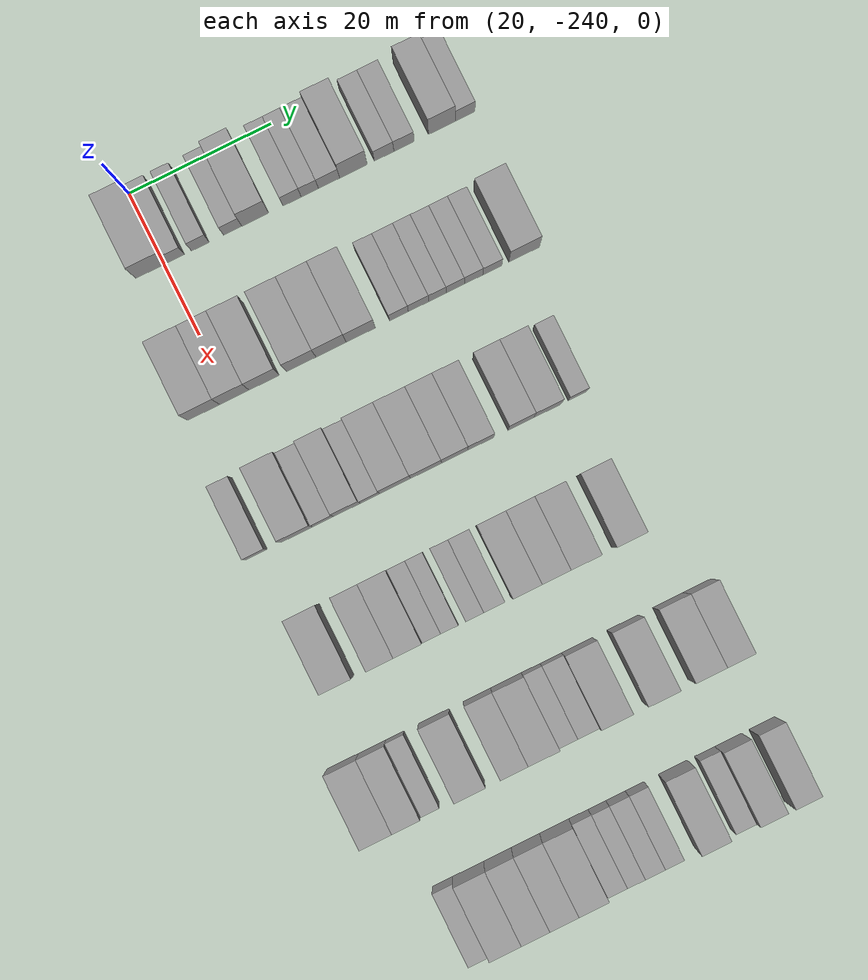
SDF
<sdf version="1.6">
 <world name="default">
  <model name="building_24">
   <static>1</static>
   <pose>25.0000 -241.8456 0 0.000000 0.000000 0.000000</pose>
   <link name="link">
    <pose>0 0 4.50 0 0 0</pose>
    <collision name="collision"><geometry><box><size>10.0000 4.2381 9.0000</size></box></geometry></collision>
    <visual name="visual">
     <cast_shadows>0</cast_shadows>
     <geometry><box><size>10.0000 4.2381 9.0000</size></box></geometry>
     <material>
      <script>
       <uri>model://grey_wall/materials/scripts</uri>
       <uri>model://grey_wall/materials/textures</uri>
       <name>vrc/grey_wall</name>
      </script>
     </material>
    </visual>
   </link>
  </model>
  <model name="building_25">
   <static>1</static>
   <pose>25.0000 -238.4380 0 0.000000 0.000000 0.000000</pose>
   <link name="link">
    <pose>0 0 3.00 0 0 0</pose>
    <collision name="collision"><geometry><box><size>10.0000 2.5771 6.0000</size></box></geometry></collision>
    <visual name="visual">
     <cast_shadows>0</cast_shadows>
     <geometry><box><size>10.0000 2.5771 6.0000</size></box></geometry>
     <material>
      <script>
       <uri>model://grey_wall/materials/scripts</uri>
       <uri>model://grey_wall/materials/textures</uri>
       <name>vrc/grey_wall</name>
      </script>
     </material>
    </visual>
   </link>
  </model>
  <model name="building_26">
   <static>1</static>
   <pose>25.0000 -234.9004 0 0.000000 0.000000 0.000000</pose>
   <link name="link">
    <pose>0 0 3.00 0 0 0</pose>
    <collision name="collision"><geometry><box><size>10.0000 2.4980 6.0000</size></box></geometry></collision>
    <visual name="visual">
     <cast_shadows>0</cast_shadows>
     <geometry><box><size>10.0000 2.4980 6.0000</size></box></geometry>
     <material>
      <script>
       <uri>model://grey_wall/materials/scripts</uri>
       <uri>model://grey_wall/materials/textures</uri>
       <name>vrc/grey_wall</name>
      </script>
     </material>
    </visual>
   </link>
  </model>
  <model name="building_27">
   <static>1</static>
   <pose>25.0000 -230.3771 0 0.000000 0.000000 0.000000</pose>
   <link name="link">
    <pose>0 0 3.00 0 0 0</pose>
    <collision name="collision"><geometry><box><size>10.0000 2.5487 6.0000</size></box></geometry></collision>
    <visual name="visual">
     <cast_shadows>0</cast_shadows>
     <geometry><box><size>10.0000 2.5487 6.0000</size></box></geometry>
     <material>
      <script>
       <uri>model://grey_wall/materials/scripts</uri>
       <uri>model://grey_wall/materials/textures</uri>
       <name>vrc/grey_wall</name>
      </script>
     </material>
    </visual>
   </link>
  </model>
  <model name="building_28">
   <static>1</static>
   <pose>25.0000 -227.2078 0 0.000000 0.000000 0.000000</pose>
   <link name="link">
    <pose>0 0 4.50 0 0 0</pose>
    <collision name="collision"><geometry><box><size>10.0000 3.7900 9.0000</size></box></geometry></collision>
    <visual name="visual">
     <cast_shadows>0</cast_shadows>
     <geometry><box><size>10.0000 3.7900 9.0000</size></box></geometry>
     <material>
      <script>
       <uri>model://grey_wall/materials/scripts</uri>
       <uri>model://grey_wall/materials/textures</uri>
       <name>vrc/grey_wall</name>
      </script>
     </material>
    </visual>
   </link>
  </model>
  <model name="building_29">
   <static>1</static>
   <pose>25.0000 -222.0278 0 0.000000 0.000000 0.000000</pose>
   <link name="link">
    <pose>0 0 3.00 0 0 0</pose>
    <collision name="collision"><geometry><box><size>10.0000 2.5699 6.0000</size></box></geometry></collision>
    <visual name="visual">
     <cast_shadows>0</cast_shadows>
     <geometry><box><size>10.0000 2.5699 6.0000</size></box></geometry>
     <material>
      <script>
       <uri>model://grey_wall/materials/scripts</uri>
       <uri>model://grey_wall/materials/textures</uri>
       <name>vrc/grey_wall</name>
      </script>
     </material>
    </visual>
   </link>
  </model>
  <model name="building_30">
   <static>1</static>
   <pose>25.0000 -219.5362 0 0.000000 0.000000 0.000000</pose>
   <link name="link">
    <pose>0 0 3.00 0 0 0</pose>
    <collision name="collision"><geometry><box><size>10.0000 2.4133 6.0000</size></box></geometry></collision>
    <visual name="visual">
     <cast_shadows>0</cast_shadows>
     <geometry><box><size>10.0000 2.4133 6.0000</size></box></geometry>
     <material>
      <script>
       <uri>model://grey_wall/materials/scripts</uri>
       <uri>model://grey_wall/materials/textures</uri>
       <name>vrc/grey_wall</name>
      </script>
     </material>
    </visual>
   </link>
  </model>
  <model name="building_31">
   <static>1</static>
   <pose>25.0000 -216.8375 0 0.000000 0.000000 0.000000</pose>
   <link name="link">
    <pose>0 0 3.00 0 0 0</pose>
    <collision name="collision"><geometry><box><size>10.0000 2.9841 6.0000</size></box></geometry></collision>
    <visual name="visual">
     <cast_shadows>0</cast_shadows>
     <geometry><box><size>10.0000 2.9841 6.0000</size></box></geometry>
     <material>
      <script>
       <uri>model://grey_wall/materials/scripts</uri>
       <uri>model://grey_wall/materials/textures</uri>
       <name>vrc/grey_wall</name>
      </script>
     </material>
    </visual>
   </link>
  </model>
  <model name="building_32">
   <static>1</static>
   <pose>25.0000 -213.4018 0 0.000000 0.000000 0.000000</pose>
   <link name="link">
    <pose>0 0 4.50 0 0 0</pose>
    <collision name="collision"><geometry><box><size>10.0000 3.8874 9.0000</size></box></geometry></collision>
    <visual name="visual">
     <cast_shadows>0</cast_shadows>
     <geometry><box><size>10.0000 3.8874 9.0000</size></box></geometry>
     <material>
      <script>
       <uri>model://grey_wall/materials/scripts</uri>
       <uri>model://grey_wall/materials/textures</uri>
       <name>vrc/grey_wall</name>
      </script>
     </material>
    </visual>
   </link>
  </model>
  <model name="building_33">
   <static>1</static>
   <pose>25.0000 -209.0826 0 0.000000 0.000000 0.000000</pose>
   <link name="link">
    <pose>0 0 3.00 0 0 0</pose>
    <collision name="collision"><geometry><box><size>10.0000 2.7510 6.0000</size></box></geometry></collision>
    <visual name="visual">
     <cast_shadows>0</cast_shadows>
     <geometry><box><size>10.0000 2.7510 6.0000</size></box></geometry>
     <material>
      <script>
       <uri>model://grey_wall/materials/scripts</uri>
       <uri>model://grey_wall/materials/textures</uri>
       <name>vrc/grey_wall</name>
      </script>
     </material>
    </visual>
   </link>
  </model>
  <model name="building_34">
   <static>1</static>
   <pose>25.0000 -206.2779 0 0.000000 0.000000 0.000000</pose>
   <link name="link">
    <pose>0 0 3.00 0 0 0</pose>
    <collision name="collision"><geometry><box><size>10.0000 2.8583 6.0000</size></box></geometry></collision>
    <visual name="visual">
     <cast_shadows>0</cast_shadows>
     <geometry><box><size>10.0000 2.8583 6.0000</size></box></geometry>
     <material>
      <script>
       <uri>model://grey_wall/materials/scripts</uri>
       <uri>model://grey_wall/materials/textures</uri>
       <name>vrc/grey_wall</name>
      </script>
     </material>
    </visual>
   </link>
  </model>
  <model name="building_35">
   <static>1</static>
   <pose>25.0000 -200.9639 0 0.000000 0.000000 0.000000</pose>
   <link name="link">
    <pose>0 0 4.50 0 0 0</pose>
    <collision name="collision"><geometry><box><size>10.0000 3.7698 9.0000</size></box></geometry></collision>
    <visual name="visual">
     <cast_shadows>0</cast_shadows>
     <geometry><box><size>10.0000 3.7698 9.0000</size></box></geometry>
     <material>
      <script>
       <uri>model://grey_wall/materials/scripts</uri>
       <uri>model://grey_wall/materials/textures</uri>
       <name>vrc/grey_wall</name>
      </script>
     </material>
    </visual>
   </link>
  </model>
  <model name="building_36">
   <static>1</static>
   <pose>25.0000 -197.6932 0 0.000000 0.000000 0.000000</pose>
   <link name="link">
    <pose>0 0 3.00 0 0 0</pose>
    <collision name="collision"><geometry><box><size>10.0000 2.7715 6.0000</size></box></geometry></collision>
    <visual name="visual">
     <cast_shadows>0</cast_shadows>
     <geometry><box><size>10.0000 2.7715 6.0000</size></box></geometry>
     <material>
      <script>
       <uri>model://grey_wall/materials/scripts</uri>
       <uri>model://grey_wall/materials/textures</uri>
       <name>vrc/grey_wall</name>
      </script>
     </material>
    </visual>
   </link>
  </model>
  <model name="building_195">
   <static>1</static>
   <pose>44.0000 -243.7559 0 0.000000 0.000000 0.000000</pose>
   <link name="link">
    <pose>0 0 4.50 0 0 0</pose>
    <collision name="collision"><geometry><box><size>10.0000 4.4892 9.0000</size></box></geometry></collision>
    <visual name="visual">
     <cast_shadows>0</cast_shadows>
     <geometry><box><size>10.0000 4.4892 9.0000</size></box></geometry>
     <material>
      <script>
       <uri>model://grey_wall/materials/scripts</uri>
       <uri>model://grey_wall/materials/textures</uri>
       <name>vrc/grey_wall</name>
      </script>
     </material>
    </visual>
   </link>
  </model>
  <model name="building_196">
   <static>1</static>
   <pose>44.0000 -239.4496 0 0.000000 0.000000 0.000000</pose>
   <link name="link">
    <pose>0 0 4.50 0 0 0</pose>
    <collision name="collision"><geometry><box><size>10.0000 4.1235 9.0000</size></box></geometry></collision>
    <visual name="visual">
     <cast_shadows>0</cast_shadows>
     <geometry><box><size>10.0000 4.1235 9.0000</size></box></geometry>
     <material>
      <script>
       <uri>model://grey_wall/materials/scripts</uri>
       <uri>model://grey_wall/materials/textures</uri>
       <name>vrc/grey_wall</name>
      </script>
     </material>
    </visual>
   </link>
  </model>
  <model name="building_197">
   <static>1</static>
   <pose>44.0000 -235.2757 0 0.000000 0.000000 0.000000</pose>
   <link name="link">
    <pose>0 0 4.50 0 0 0</pose>
    <collision name="collision"><geometry><box><size>10.0000 4.2243 9.0000</size></box></geometry></collision>
    <visual name="visual">
     <cast_shadows>0</cast_shadows>
     <geometry><box><size>10.0000 4.2243 9.0000</size></box></geometry>
     <material>
      <script>
       <uri>model://grey_wall/materials/scripts</uri>
       <uri>model://grey_wall/materials/textures</uri>
       <name>vrc/grey_wall</name>
      </script>
     </material>
    </visual>
   </link>
  </model>
  <model name="building_198">
   <static>1</static>
   <pose>44.0000 -230.0866 0 0.000000 0.000000 0.000000</pose>
   <link name="link">
    <pose>0 0 4.50 0 0 0</pose>
    <collision name="collision"><geometry><box><size>10.0000 4.1537 9.0000</size></box></geometry></collision>
    <visual name="visual">
     <cast_shadows>0</cast_shadows>
     <geometry><box><size>10.0000 4.1537 9.0000</size></box></geometry>
     <material>
      <script>
       <uri>model://grey_wall/materials/scripts</uri>
       <uri>model://grey_wall/materials/textures</uri>
       <name>vrc/grey_wall</name>
      </script>
     </material>
    </visual>
   </link>
  </model>
  <model name="building_199">
   <static>1</static>
   <pose>44.0000 -225.8986 0 0.000000 0.000000 0.000000</pose>
   <link name="link">
    <pose>0 0 4.50 0 0 0</pose>
    <collision name="collision"><geometry><box><size>10.0000 4.2223 9.0000</size></box></geometry></collision>
    <visual name="visual">
     <cast_shadows>0</cast_shadows>
     <geometry><box><size>10.0000 4.2223 9.0000</size></box></geometry>
     <material>
      <script>
       <uri>model://grey_wall/materials/scripts</uri>
       <uri>model://grey_wall/materials/textures</uri>
       <name>vrc/grey_wall</name>
      </script>
     </material>
    </visual>
   </link>
  </model>
  <model name="building_200">
   <static>1</static>
   <pose>44.0000 -221.7266 0 0.000000 0.000000 0.000000</pose>
   <link name="link">
    <pose>0 0 4.50 0 0 0</pose>
    <collision name="collision"><geometry><box><size>10.0000 4.1217 9.0000</size></box></geometry></collision>
    <visual name="visual">
     <cast_shadows>0</cast_shadows>
     <geometry><box><size>10.0000 4.1217 9.0000</size></box></geometry>
     <material>
      <script>
       <uri>model://grey_wall/materials/scripts</uri>
       <uri>model://grey_wall/materials/textures</uri>
       <name>vrc/grey_wall</name>
      </script>
     </material>
    </visual>
   </link>
  </model>
  <model name="building_201">
   <static>1</static>
   <pose>44.0000 -216.3591 0 0.000000 0.000000 0.000000</pose>
   <link name="link">
    <pose>0 0 3.00 0 0 0</pose>
    <collision name="collision"><geometry><box><size>10.0000 2.6135 6.0000</size></box></geometry></collision>
    <visual name="visual">
     <cast_shadows>0</cast_shadows>
     <geometry><box><size>10.0000 2.6135 6.0000</size></box></geometry>
     <material>
      <script>
       <uri>model://grey_wall/materials/scripts</uri>
       <uri>model://grey_wall/materials/textures</uri>
       <name>vrc/grey_wall</name>
      </script>
     </material>
    </visual>
   </link>
  </model>
  <model name="building_202">
   <static>1</static>
   <pose>44.0000 -213.6155 0 0.000000 0.000000 0.000000</pose>
   <link name="link">
    <pose>0 0 3.00 0 0 0</pose>
    <collision name="collision"><geometry><box><size>10.0000 2.8737 6.0000</size></box></geometry></collision>
    <visual name="visual">
     <cast_shadows>0</cast_shadows>
     <geometry><box><size>10.0000 2.8737 6.0000</size></box></geometry>
     <material>
      <script>
       <uri>model://grey_wall/materials/scripts</uri>
       <uri>model://grey_wall/materials/textures</uri>
       <name>vrc/grey_wall</name>
      </script>
     </material>
    </visual>
   </link>
  </model>
  <model name="building_203">
   <static>1</static>
   <pose>44.0000 -210.9670 0 0.000000 0.000000 0.000000</pose>
   <link name="link">
    <pose>0 0 3.00 0 0 0</pose>
    <collision name="collision"><geometry><box><size>10.0000 2.4234 6.0000</size></box></geometry></collision>
    <visual name="visual">
     <cast_shadows>0</cast_shadows>
     <geometry><box><size>10.0000 2.4234 6.0000</size></box></geometry>
     <material>
      <script>
       <uri>model://grey_wall/materials/scripts</uri>
       <uri>model://grey_wall/materials/textures</uri>
       <name>vrc/grey_wall</name>
      </script>
     </material>
    </visual>
   </link>
  </model>
  <model name="building_204">
   <static>1</static>
   <pose>44.0000 -208.4758 0 0.000000 0.000000 0.000000</pose>
   <link name="link">
    <pose>0 0 3.00 0 0 0</pose>
    <collision name="collision"><geometry><box><size>10.0000 2.5591 6.0000</size></box></geometry></collision>
    <visual name="visual">
     <cast_shadows>0</cast_shadows>
     <geometry><box><size>10.0000 2.5591 6.0000</size></box></geometry>
     <material>
      <script>
       <uri>model://grey_wall/materials/scripts</uri>
       <uri>model://grey_wall/materials/textures</uri>
       <name>vrc/grey_wall</name>
      </script>
     </material>
    </visual>
   </link>
  </model>
  <model name="building_205">
   <static>1</static>
   <pose>44.0000 -205.8997 0 0.000000 0.000000 0.000000</pose>
   <link name="link">
    <pose>0 0 3.00 0 0 0</pose>
    <collision name="collision"><geometry><box><size>10.0000 2.5930 6.0000</size></box></geometry></collision>
    <visual name="visual">
     <cast_shadows>0</cast_shadows>
     <geometry><box><size>10.0000 2.5930 6.0000</size></box></geometry>
     <material>
      <script>
       <uri>model://grey_wall/materials/scripts</uri>
       <uri>model://grey_wall/materials/textures</uri>
       <name>vrc/grey_wall</name>
      </script>
     </material>
    </visual>
   </link>
  </model>
  <model name="building_206">
   <static>1</static>
   <pose>44.0000 -203.2627 0 0.000000 0.000000 0.000000</pose>
   <link name="link">
    <pose>0 0 3.00 0 0 0</pose>
    <collision name="collision"><geometry><box><size>10.0000 2.6810 6.0000</size></box></geometry></collision>
    <visual name="visual">
     <cast_shadows>0</cast_shadows>
     <geometry><box><size>10.0000 2.6810 6.0000</size></box></geometry>
     <material>
      <script>
       <uri>model://grey_wall/materials/scripts</uri>
       <uri>model://grey_wall/materials/textures</uri>
       <name>vrc/grey_wall</name>
      </script>
     </material>
    </visual>
   </link>
  </model>
  <model name="building_207">
   <static>1</static>
   <pose>44.0000 -198.7807 0 0.000000 0.000000 0.000000</pose>
   <link name="link">
    <pose>0 0 4.50 0 0 0</pose>
    <collision name="collision"><geometry><box><size>10.0000 4.2829 9.0000</size></box></geometry></collision>
    <visual name="visual">
     <cast_shadows>0</cast_shadows>
     <geometry><box><size>10.0000 4.2829 9.0000</size></box></geometry>
     <material>
      <script>
       <uri>model://grey_wall/materials/scripts</uri>
       <uri>model://grey_wall/materials/textures</uri>
       <name>vrc/grey_wall</name>
      </script>
     </material>
    </visual>
   </link>
  </model>
  <model name="building_375">
   <static>1</static>
   <pose>63.0000 -245.6490 0 0.000000 0.000000 0.000000</pose>
   <link name="link">
    <pose>0 0 3.00 0 0 0</pose>
    <collision name="collision"><geometry><box><size>10.0000 2.9649 6.0000</size></box></geometry></collision>
    <visual name="visual">
     <cast_shadows>0</cast_shadows>
     <geometry><box><size>10.0000 2.9649 6.0000</size></box></geometry>
     <material>
      <script>
       <uri>model://grey_wall/materials/scripts</uri>
       <uri>model://grey_wall/materials/textures</uri>
       <name>vrc/grey_wall</name>
      </script>
     </material>
    </visual>
   </link>
  </model>
  <model name="building_376">
   <static>1</static>
   <pose>63.0000 -239.9661 0 0.000000 0.000000 0.000000</pose>
   <link name="link">
    <pose>0 0 4.50 0 0 0</pose>
    <collision name="collision"><geometry><box><size>10.0000 4.4007 9.0000</size></box></geometry></collision>
    <visual name="visual">
     <cast_shadows>0</cast_shadows>
     <geometry><box><size>10.0000 4.4007 9.0000</size></box></geometry>
     <material>
      <script>
       <uri>model://grey_wall/materials/scripts</uri>
       <uri>model://grey_wall/materials/textures</uri>
       <name>vrc/grey_wall</name>
      </script>
     </material>
    </visual>
   </link>
  </model>
  <model name="building_377">
   <static>1</static>
   <pose>63.0000 -236.3128 0 0.000000 0.000000 0.000000</pose>
   <link name="link">
    <pose>0 0 3.00 0 0 0</pose>
    <collision name="collision"><geometry><box><size>10.0000 2.9060 6.0000</size></box></geometry></collision>
    <visual name="visual">
     <cast_shadows>0</cast_shadows>
     <geometry><box><size>10.0000 2.9060 6.0000</size></box></geometry>
     <material>
      <script>
       <uri>model://grey_wall/materials/scripts</uri>
       <uri>model://grey_wall/materials/textures</uri>
       <name>vrc/grey_wall</name>
      </script>
     </material>
    </visual>
   </link>
  </model>
  <model name="building_378">
   <static>1</static>
   <pose>63.0000 -233.0045 0 0.000000 0.000000 0.000000</pose>
   <link name="link">
    <pose>0 0 4.50 0 0 0</pose>
    <collision name="collision"><geometry><box><size>10.0000 3.7107 9.0000</size></box></geometry></collision>
    <visual name="visual">
     <cast_shadows>0</cast_shadows>
     <geometry><box><size>10.0000 3.7107 9.0000</size></box></geometry>
     <material>
      <script>
       <uri>model://grey_wall/materials/scripts</uri>
       <uri>model://grey_wall/materials/textures</uri>
       <name>vrc/grey_wall</name>
      </script>
     </material>
    </visual>
   </link>
  </model>
  <model name="building_379">
   <static>1</static>
   <pose>63.0000 -229.7938 0 0.000000 0.000000 0.000000</pose>
   <link name="link">
    <pose>0 0 3.00 0 0 0</pose>
    <collision name="collision"><geometry><box><size>10.0000 2.7106 6.0000</size></box></geometry></collision>
    <visual name="visual">
     <cast_shadows>0</cast_shadows>
     <geometry><box><size>10.0000 2.7106 6.0000</size></box></geometry>
     <material>
      <script>
       <uri>model://grey_wall/materials/scripts</uri>
       <uri>model://grey_wall/materials/textures</uri>
       <name>vrc/grey_wall</name>
      </script>
     </material>
    </visual>
   </link>
  </model>
  <model name="building_380">
   <static>1</static>
   <pose>63.0000 -226.2833 0 0.000000 0.000000 0.000000</pose>
   <link name="link">
    <pose>0 0 4.50 0 0 0</pose>
    <collision name="collision"><geometry><box><size>10.0000 4.3103 9.0000</size></box></geometry></collision>
    <visual name="visual">
     <cast_shadows>0</cast_shadows>
     <geometry><box><size>10.0000 4.3103 9.0000</size></box></geometry>
     <material>
      <script>
       <uri>model://grey_wall/materials/scripts</uri>
       <uri>model://grey_wall/materials/textures</uri>
       <name>vrc/grey_wall</name>
      </script>
     </material>
    </visual>
   </link>
  </model>
  <model name="building_381">
   <static>1</static>
   <pose>63.0000 -221.9607 0 0.000000 0.000000 0.000000</pose>
   <link name="link">
    <pose>0 0 4.50 0 0 0</pose>
    <collision name="collision"><geometry><box><size>10.0000 4.3350 9.0000</size></box></geometry></collision>
    <visual name="visual">
     <cast_shadows>0</cast_shadows>
     <geometry><box><size>10.0000 4.3350 9.0000</size></box></geometry>
     <material>
      <script>
       <uri>model://grey_wall/materials/scripts</uri>
       <uri>model://grey_wall/materials/textures</uri>
       <name>vrc/grey_wall</name>
      </script>
     </material>
    </visual>
   </link>
  </model>
  <model name="building_382">
   <static>1</static>
   <pose>63.0000 -217.9499 0 0.000000 0.000000 0.000000</pose>
   <link name="link">
    <pose>0 0 4.50 0 0 0</pose>
    <collision name="collision"><geometry><box><size>10.0000 3.6866 9.0000</size></box></geometry></collision>
    <visual name="visual">
     <cast_shadows>0</cast_shadows>
     <geometry><box><size>10.0000 3.6866 9.0000</size></box></geometry>
     <material>
      <script>
       <uri>model://grey_wall/materials/scripts</uri>
       <uri>model://grey_wall/materials/textures</uri>
       <name>vrc/grey_wall</name>
      </script>
     </material>
    </visual>
   </link>
  </model>
  <model name="building_383">
   <static>1</static>
   <pose>63.0000 -214.2915 0 0.000000 0.000000 0.000000</pose>
   <link name="link">
    <pose>0 0 4.50 0 0 0</pose>
    <collision name="collision"><geometry><box><size>10.0000 3.6303 9.0000</size></box></geometry></collision>
    <visual name="visual">
     <cast_shadows>0</cast_shadows>
     <geometry><box><size>10.0000 3.6303 9.0000</size></box></geometry>
     <material>
      <script>
       <uri>model://grey_wall/materials/scripts</uri>
       <uri>model://grey_wall/materials/textures</uri>
       <name>vrc/grey_wall</name>
      </script>
     </material>
    </visual>
   </link>
  </model>
  <model name="building_384">
   <static>1</static>
   <pose>63.0000 -208.6681 0 0.000000 0.000000 0.000000</pose>
   <link name="link">
    <pose>0 0 4.50 0 0 0</pose>
    <collision name="collision"><geometry><box><size>10.0000 3.6164 9.0000</size></box></geometry></collision>
    <visual name="visual">
     <cast_shadows>0</cast_shadows>
     <geometry><box><size>10.0000 3.6164 9.0000</size></box></geometry>
     <material>
      <script>
       <uri>model://grey_wall/materials/scripts</uri>
       <uri>model://grey_wall/materials/textures</uri>
       <name>vrc/grey_wall</name>
      </script>
     </material>
    </visual>
   </link>
  </model>
  <model name="building_385">
   <static>1</static>
   <pose>63.0000 -204.9426 0 0.000000 0.000000 0.000000</pose>
   <link name="link">
    <pose>0 0 4.50 0 0 0</pose>
    <collision name="collision"><geometry><box><size>10.0000 3.8346 9.0000</size></box></geometry></collision>
    <visual name="visual">
     <cast_shadows>0</cast_shadows>
     <geometry><box><size>10.0000 3.8346 9.0000</size></box></geometry>
     <material>
      <script>
       <uri>model://grey_wall/materials/scripts</uri>
       <uri>model://grey_wall/materials/textures</uri>
       <name>vrc/grey_wall</name>
      </script>
     </material>
    </visual>
   </link>
  </model>
  <model name="building_386">
   <static>1</static>
   <pose>63.0000 -200.7146 0 0.000000 0.000000 0.000000</pose>
   <link name="link">
    <pose>0 0 3.00 0 0 0</pose>
    <collision name="collision"><geometry><box><size>10.0000 2.6213 6.0000</size></box></geometry></collision>
    <visual name="visual">
     <cast_shadows>0</cast_shadows>
     <geometry><box><size>10.0000 2.6213 6.0000</size></box></geometry>
     <material>
      <script>
       <uri>model://grey_wall/materials/scripts</uri>
       <uri>model://grey_wall/materials/textures</uri>
       <name>vrc/grey_wall</name>
      </script>
     </material>
    </visual>
   </link>
  </model>
  <model name="building_541">
   <static>1</static>
   <pose>82.0000 -243.5542 0 0.000000 0.000000 0.000000</pose>
   <link name="link">
    <pose>0 0 4.50 0 0 0</pose>
    <collision name="collision"><geometry><box><size>10.0000 4.3786 9.0000</size></box></geometry></collision>
    <visual name="visual">
     <cast_shadows>0</cast_shadows>
     <geometry><box><size>10.0000 4.3786 9.0000</size></box></geometry>
     <material>
      <script>
       <uri>model://grey_wall/materials/scripts</uri>
       <uri>model://grey_wall/materials/textures</uri>
       <name>vrc/grey_wall</name>
      </script>
     </material>
    </visual>
   </link>
  </model>
  <model name="building_542">
   <static>1</static>
   <pose>82.0000 -237.5093 0 0.000000 0.000000 0.000000</pose>
   <link name="link">
    <pose>0 0 4.50 0 0 0</pose>
    <collision name="collision"><geometry><box><size>10.0000 3.7112 9.0000</size></box></geometry></collision>
    <visual name="visual">
     <cast_shadows>0</cast_shadows>
     <geometry><box><size>10.0000 3.7112 9.0000</size></box></geometry>
     <material>
      <script>
       <uri>model://grey_wall/materials/scripts</uri>
       <uri>model://grey_wall/materials/textures</uri>
       <name>vrc/grey_wall</name>
      </script>
     </material>
    </visual>
   </link>
  </model>
  <model name="building_543">
   <static>1</static>
   <pose>82.0000 -233.7210 0 0.000000 0.000000 0.000000</pose>
   <link name="link">
    <pose>0 0 4.50 0 0 0</pose>
    <collision name="collision"><geometry><box><size>10.0000 3.8654 9.0000</size></box></geometry></collision>
    <visual name="visual">
     <cast_shadows>0</cast_shadows>
     <geometry><box><size>10.0000 3.8654 9.0000</size></box></geometry>
     <material>
      <script>
       <uri>model://grey_wall/materials/scripts</uri>
       <uri>model://grey_wall/materials/textures</uri>
       <name>vrc/grey_wall</name>
      </script>
     </material>
    </visual>
   </link>
  </model>
  <model name="building_544">
   <static>1</static>
   <pose>82.0000 -230.5209 0 0.000000 0.000000 0.000000</pose>
   <link name="link">
    <pose>0 0 3.00 0 0 0</pose>
    <collision name="collision"><geometry><box><size>10.0000 2.5349 6.0000</size></box></geometry></collision>
    <visual name="visual">
     <cast_shadows>0</cast_shadows>
     <geometry><box><size>10.0000 2.5349 6.0000</size></box></geometry>
     <material>
      <script>
       <uri>model://grey_wall/materials/scripts</uri>
       <uri>model://grey_wall/materials/textures</uri>
       <name>vrc/grey_wall</name>
      </script>
     </material>
    </visual>
   </link>
  </model>
  <model name="building_545">
   <static>1</static>
   <pose>82.0000 -228.0471 0 0.000000 0.000000 0.000000</pose>
   <link name="link">
    <pose>0 0 3.00 0 0 0</pose>
    <collision name="collision"><geometry><box><size>10.0000 2.4128 6.0000</size></box></geometry></collision>
    <visual name="visual">
     <cast_shadows>0</cast_shadows>
     <geometry><box><size>10.0000 2.4128 6.0000</size></box></geometry>
     <material>
      <script>
       <uri>model://grey_wall/materials/scripts</uri>
       <uri>model://grey_wall/materials/textures</uri>
       <name>vrc/grey_wall</name>
      </script>
     </material>
    </visual>
   </link>
  </model>
  <model name="building_546">
   <static>1</static>
   <pose>82.0000 -224.6015 0 0.000000 0.000000 0.000000</pose>
   <link name="link">
    <pose>0 0 3.00 0 0 0</pose>
    <collision name="collision"><geometry><box><size>10.0000 2.4784 6.0000</size></box></geometry></collision>
    <visual name="visual">
     <cast_shadows>0</cast_shadows>
     <geometry><box><size>10.0000 2.4784 6.0000</size></box></geometry>
     <material>
      <script>
       <uri>model://grey_wall/materials/scripts</uri>
       <uri>model://grey_wall/materials/textures</uri>
       <name>vrc/grey_wall</name>
      </script>
     </material>
    </visual>
   </link>
  </model>
  <model name="building_547">
   <static>1</static>
   <pose>82.0000 -221.9022 0 0.000000 0.000000 0.000000</pose>
   <link name="link">
    <pose>0 0 3.00 0 0 0</pose>
    <collision name="collision"><geometry><box><size>10.0000 2.9203 6.0000</size></box></geometry></collision>
    <visual name="visual">
     <cast_shadows>0</cast_shadows>
     <geometry><box><size>10.0000 2.9203 6.0000</size></box></geometry>
     <material>
      <script>
       <uri>model://grey_wall/materials/scripts</uri>
       <uri>model://grey_wall/materials/textures</uri>
       <name>vrc/grey_wall</name>
      </script>
     </material>
    </visual>
   </link>
  </model>
  <model name="building_548">
   <static>1</static>
   <pose>82.0000 -217.4598 0 0.000000 0.000000 0.000000</pose>
   <link name="link">
    <pose>0 0 4.50 0 0 0</pose>
    <collision name="collision"><geometry><box><size>10.0000 3.9645 9.0000</size></box></geometry></collision>
    <visual name="visual">
     <cast_shadows>0</cast_shadows>
     <geometry><box><size>10.0000 3.9645 9.0000</size></box></geometry>
     <material>
      <script>
       <uri>model://grey_wall/materials/scripts</uri>
       <uri>model://grey_wall/materials/textures</uri>
       <name>vrc/grey_wall</name>
      </script>
     </material>
    </visual>
   </link>
  </model>
  <model name="building_549">
   <static>1</static>
   <pose>82.0000 -213.5065 0 0.000000 0.000000 0.000000</pose>
   <link name="link">
    <pose>0 0 4.50 0 0 0</pose>
    <collision name="collision"><geometry><box><size>10.0000 3.9420 9.0000</size></box></geometry></collision>
    <visual name="visual">
     <cast_shadows>0</cast_shadows>
     <geometry><box><size>10.0000 3.9420 9.0000</size></box></geometry>
     <material>
      <script>
       <uri>model://grey_wall/materials/scripts</uri>
       <uri>model://grey_wall/materials/textures</uri>
       <name>vrc/grey_wall</name>
      </script>
     </material>
    </visual>
   </link>
  </model>
  <model name="building_550">
   <static>1</static>
   <pose>82.0000 -209.4273 0 0.000000 0.000000 0.000000</pose>
   <link name="link">
    <pose>0 0 4.50 0 0 0</pose>
    <collision name="collision"><geometry><box><size>10.0000 4.2164 9.0000</size></box></geometry></collision>
    <visual name="visual">
     <cast_shadows>0</cast_shadows>
     <geometry><box><size>10.0000 4.2164 9.0000</size></box></geometry>
     <material>
      <script>
       <uri>model://grey_wall/materials/scripts</uri>
       <uri>model://grey_wall/materials/textures</uri>
       <name>vrc/grey_wall</name>
      </script>
     </material>
    </visual>
   </link>
  </model>
  <model name="building_551">
   <static>1</static>
   <pose>82.0000 -203.2256 0 0.000000 0.000000 0.000000</pose>
   <link name="link">
    <pose>0 0 4.50 0 0 0</pose>
    <collision name="collision"><geometry><box><size>10.0000 4.1872 9.0000</size></box></geometry></collision>
    <visual name="visual">
     <cast_shadows>0</cast_shadows>
     <geometry><box><size>10.0000 4.1872 9.0000</size></box></geometry>
     <material>
      <script>
       <uri>model://grey_wall/materials/scripts</uri>
       <uri>model://grey_wall/materials/textures</uri>
       <name>vrc/grey_wall</name>
      </script>
     </material>
    </visual>
   </link>
  </model>
  <model name="building_714">
   <static>1</static>
   <pose>101.0000 -247.4268 0 0.000000 0.000000 0.000000</pose>
   <link name="link">
    <pose>0 0 4.50 0 0 0</pose>
    <collision name="collision"><geometry><box><size>10.0000 4.4084 9.0000</size></box></geometry></collision>
    <visual name="visual">
     <cast_shadows>0</cast_shadows>
     <geometry><box><size>10.0000 4.4084 9.0000</size></box></geometry>
     <material>
      <script>
       <uri>model://grey_wall/materials/scripts</uri>
       <uri>model://grey_wall/materials/textures</uri>
       <name>vrc/grey_wall</name>
      </script>
     </material>
    </visual>
   </link>
  </model>
  <model name="building_715">
   <static>1</static>
   <pose>101.0000 -243.3110 0 0.000000 0.000000 0.000000</pose>
   <link name="link">
    <pose>0 0 4.50 0 0 0</pose>
    <collision name="collision"><geometry><box><size>10.0000 3.8232 9.0000</size></box></geometry></collision>
    <visual name="visual">
     <cast_shadows>0</cast_shadows>
     <geometry><box><size>10.0000 3.8232 9.0000</size></box></geometry>
     <material>
      <script>
       <uri>model://grey_wall/materials/scripts</uri>
       <uri>model://grey_wall/materials/textures</uri>
       <name>vrc/grey_wall</name>
      </script>
     </material>
    </visual>
   </link>
  </model>
  <model name="building_716">
   <static>1</static>
   <pose>101.0000 -240.1203 0 0.000000 0.000000 0.000000</pose>
   <link name="link">
    <pose>0 0 3.00 0 0 0</pose>
    <collision name="collision"><geometry><box><size>10.0000 2.5581 6.0000</size></box></geometry></collision>
    <visual name="visual">
     <cast_shadows>0</cast_shadows>
     <geometry><box><size>10.0000 2.5581 6.0000</size></box></geometry>
     <material>
      <script>
       <uri>model://grey_wall/materials/scripts</uri>
       <uri>model://grey_wall/materials/textures</uri>
       <name>vrc/grey_wall</name>
      </script>
     </material>
    </visual>
   </link>
  </model>
  <model name="building_717">
   <static>1</static>
   <pose>101.0000 -234.7105 0 0.000000 0.000000 0.000000</pose>
   <link name="link">
    <pose>0 0 4.50 0 0 0</pose>
    <collision name="collision"><geometry><box><size>10.0000 4.2616 9.0000</size></box></geometry></collision>
    <visual name="visual">
     <cast_shadows>0</cast_shadows>
     <geometry><box><size>10.0000 4.2616 9.0000</size></box></geometry>
     <material>
      <script>
       <uri>model://grey_wall/materials/scripts</uri>
       <uri>model://grey_wall/materials/textures</uri>
       <name>vrc/grey_wall</name>
      </script>
     </material>
    </visual>
   </link>
  </model>
  <model name="building_718">
   <static>1</static>
   <pose>101.0000 -228.6816 0 0.000000 0.000000 0.000000</pose>
   <link name="link">
    <pose>0 0 4.50 0 0 0</pose>
    <collision name="collision"><geometry><box><size>10.0000 3.7963 9.0000</size></box></geometry></collision>
    <visual name="visual">
     <cast_shadows>0</cast_shadows>
     <geometry><box><size>10.0000 3.7963 9.0000</size></box></geometry>
     <material>
      <script>
       <uri>model://grey_wall/materials/scripts</uri>
       <uri>model://grey_wall/materials/textures</uri>
       <name>vrc/grey_wall</name>
      </script>
     </material>
    </visual>
   </link>
  </model>
  <model name="building_719">
   <static>1</static>
   <pose>101.0000 -224.6340 0 0.000000 0.000000 0.000000</pose>
   <link name="link">
    <pose>0 0 4.50 0 0 0</pose>
    <collision name="collision"><geometry><box><size>10.0000 4.2988 9.0000</size></box></geometry></collision>
    <visual name="visual">
     <cast_shadows>0</cast_shadows>
     <geometry><box><size>10.0000 4.2988 9.0000</size></box></geometry>
     <material>
      <script>
       <uri>model://grey_wall/materials/scripts</uri>
       <uri>model://grey_wall/materials/textures</uri>
       <name>vrc/grey_wall</name>
      </script>
     </material>
    </visual>
   </link>
  </model>
  <model name="building_720">
   <static>1</static>
   <pose>101.0000 -221.1847 0 0.000000 0.000000 0.000000</pose>
   <link name="link">
    <pose>0 0 3.00 0 0 0</pose>
    <collision name="collision"><geometry><box><size>10.0000 2.5998 6.0000</size></box></geometry></collision>
    <visual name="visual">
     <cast_shadows>0</cast_shadows>
     <geometry><box><size>10.0000 2.5998 6.0000</size></box></geometry>
     <material>
      <script>
       <uri>model://grey_wall/materials/scripts</uri>
       <uri>model://grey_wall/materials/textures</uri>
       <name>vrc/grey_wall</name>
      </script>
     </material>
    </visual>
   </link>
  </model>
  <model name="building_721">
   <static>1</static>
   <pose>101.0000 -218.3953 0 0.000000 0.000000 0.000000</pose>
   <link name="link">
    <pose>0 0 3.00 0 0 0</pose>
    <collision name="collision"><geometry><box><size>10.0000 2.9790 6.0000</size></box></geometry></collision>
    <visual name="visual">
     <cast_shadows>0</cast_shadows>
     <geometry><box><size>10.0000 2.9790 6.0000</size></box></geometry>
     <material>
      <script>
       <uri>model://grey_wall/materials/scripts</uri>
       <uri>model://grey_wall/materials/textures</uri>
       <name>vrc/grey_wall</name>
      </script>
     </material>
    </visual>
   </link>
  </model>
  <model name="building_722">
   <static>1</static>
   <pose>101.0000 -214.7090 0 0.000000 0.000000 0.000000</pose>
   <link name="link">
    <pose>0 0 4.50 0 0 0</pose>
    <collision name="collision"><geometry><box><size>10.0000 4.3937 9.0000</size></box></geometry></collision>
    <visual name="visual">
     <cast_shadows>0</cast_shadows>
     <geometry><box><size>10.0000 4.3937 9.0000</size></box></geometry>
     <material>
      <script>
       <uri>model://grey_wall/materials/scripts</uri>
       <uri>model://grey_wall/materials/textures</uri>
       <name>vrc/grey_wall</name>
      </script>
     </material>
    </visual>
   </link>
  </model>
  <model name="building_723">
   <static>1</static>
   <pose>101.0000 -208.3147 0 0.000000 0.000000 0.000000</pose>
   <link name="link">
    <pose>0 0 4.50 0 0 0</pose>
    <collision name="collision"><geometry><box><size>10.0000 4.3951 9.0000</size></box></geometry></collision>
    <visual name="visual">
     <cast_shadows>0</cast_shadows>
     <geometry><box><size>10.0000 4.3951 9.0000</size></box></geometry>
     <material>
      <script>
       <uri>model://grey_wall/materials/scripts</uri>
       <uri>model://grey_wall/materials/textures</uri>
       <name>vrc/grey_wall</name>
      </script>
     </material>
    </visual>
   </link>
  </model>
  <model name="building_724">
   <static>1</static>
   <pose>101.0000 -201.9670 0 0.000000 0.000000 0.000000</pose>
   <link name="link">
    <pose>0 0 4.50 0 0 0</pose>
    <collision name="collision"><geometry><box><size>10.0000 4.3001 9.0000</size></box></geometry></collision>
    <visual name="visual">
     <cast_shadows>0</cast_shadows>
     <geometry><box><size>10.0000 4.3001 9.0000</size></box></geometry>
     <material>
      <script>
       <uri>model://grey_wall/materials/scripts</uri>
       <uri>model://grey_wall/materials/textures</uri>
       <name>vrc/grey_wall</name>
      </script>
     </material>
    </visual>
   </link>
  </model>
  <model name="building_725">
   <static>1</static>
   <pose>101.0000 -197.8767 0 0.000000 0.000000 0.000000</pose>
   <link name="link">
    <pose>0 0 4.50 0 0 0</pose>
    <collision name="collision"><geometry><box><size>10.0000 3.8806 9.0000</size></box></geometry></collision>
    <visual name="visual">
     <cast_shadows>0</cast_shadows>
     <geometry><box><size>10.0000 3.8806 9.0000</size></box></geometry>
     <material>
      <script>
       <uri>model://grey_wall/materials/scripts</uri>
       <uri>model://grey_wall/materials/textures</uri>
       <name>vrc/grey_wall</name>
      </script>
     </material>
    </visual>
   </link>
  </model>
  <model name="building_893">
   <static>1</static>
   <pose>120.0000 -242.8888 0 0.000000 0.000000 0.000000</pose>
   <link name="link">
    <pose>0 0 3.00 0 0 0</pose>
    <collision name="collision"><geometry><box><size>10.0000 2.8147 6.0000</size></box></geometry></collision>
    <visual name="visual">
     <cast_shadows>0</cast_shadows>
     <geometry><box><size>10.0000 2.8147 6.0000</size></box></geometry>
     <material>
      <script>
       <uri>model://grey_wall/materials/scripts</uri>
       <uri>model://grey_wall/materials/textures</uri>
       <name>vrc/grey_wall</name>
      </script>
     </material>
    </visual>
   </link>
  </model>
  <model name="building_894">
   <static>1</static>
   <pose>120.0000 -239.3130 0 0.000000 0.000000 0.000000</pose>
   <link name="link">
    <pose>0 0 4.50 0 0 0</pose>
    <collision name="collision"><geometry><box><size>10.0000 4.3369 9.0000</size></box></geometry></collision>
    <visual name="visual">
     <cast_shadows>0</cast_shadows>
     <geometry><box><size>10.0000 4.3369 9.0000</size></box></geometry>
     <material>
      <script>
       <uri>model://grey_wall/materials/scripts</uri>
       <uri>model://grey_wall/materials/textures</uri>
       <name>vrc/grey_wall</name>
      </script>
     </material>
    </visual>
   </link>
  </model>
  <model name="building_895">
   <static>1</static>
   <pose>120.0000 -235.2256 0 0.000000 0.000000 0.000000</pose>
   <link name="link">
    <pose>0 0 4.50 0 0 0</pose>
    <collision name="collision"><geometry><box><size>10.0000 3.8378 9.0000</size></box></geometry></collision>
    <visual name="visual">
     <cast_shadows>0</cast_shadows>
     <geometry><box><size>10.0000 3.8378 9.0000</size></box></geometry>
     <material>
      <script>
       <uri>model://grey_wall/materials/scripts</uri>
       <uri>model://grey_wall/materials/textures</uri>
       <name>vrc/grey_wall</name>
      </script>
     </material>
    </visual>
   </link>
  </model>
  <model name="building_896">
   <static>1</static>
   <pose>120.0000 -231.3330 0 0.000000 0.000000 0.000000</pose>
   <link name="link">
    <pose>0 0 4.50 0 0 0</pose>
    <collision name="collision"><geometry><box><size>10.0000 3.9473 9.0000</size></box></geometry></collision>
    <visual name="visual">
     <cast_shadows>0</cast_shadows>
     <geometry><box><size>10.0000 3.9473 9.0000</size></box></geometry>
     <material>
      <script>
       <uri>model://grey_wall/materials/scripts</uri>
       <uri>model://grey_wall/materials/textures</uri>
       <name>vrc/grey_wall</name>
      </script>
     </material>
    </visual>
   </link>
  </model>
  <model name="building_897">
   <static>1</static>
   <pose>120.0000 -227.3040 0 0.000000 0.000000 0.000000</pose>
   <link name="link">
    <pose>0 0 4.50 0 0 0</pose>
    <collision name="collision"><geometry><box><size>10.0000 4.1107 9.0000</size></box></geometry></collision>
    <visual name="visual">
     <cast_shadows>0</cast_shadows>
     <geometry><box><size>10.0000 4.1107 9.0000</size></box></geometry>
     <material>
      <script>
       <uri>model://grey_wall/materials/scripts</uri>
       <uri>model://grey_wall/materials/textures</uri>
       <name>vrc/grey_wall</name>
      </script>
     </material>
    </visual>
   </link>
  </model>
  <model name="building_898">
   <static>1</static>
   <pose>120.0000 -223.9040 0 0.000000 0.000000 0.000000</pose>
   <link name="link">
    <pose>0 0 3.00 0 0 0</pose>
    <collision name="collision"><geometry><box><size>10.0000 2.6892 6.0000</size></box></geometry></collision>
    <visual name="visual">
     <cast_shadows>0</cast_shadows>
     <geometry><box><size>10.0000 2.6892 6.0000</size></box></geometry>
     <material>
      <script>
       <uri>model://grey_wall/materials/scripts</uri>
       <uri>model://grey_wall/materials/textures</uri>
       <name>vrc/grey_wall</name>
      </script>
     </material>
    </visual>
   </link>
  </model>
  <model name="building_899">
   <static>1</static>
   <pose>120.0000 -221.3286 0 0.000000 0.000000 0.000000</pose>
   <link name="link">
    <pose>0 0 3.00 0 0 0</pose>
    <collision name="collision"><geometry><box><size>10.0000 2.4617 6.0000</size></box></geometry></collision>
    <visual name="visual">
     <cast_shadows>0</cast_shadows>
     <geometry><box><size>10.0000 2.4617 6.0000</size></box></geometry>
     <material>
      <script>
       <uri>model://grey_wall/materials/scripts</uri>
       <uri>model://grey_wall/materials/textures</uri>
       <name>vrc/grey_wall</name>
      </script>
     </material>
    </visual>
   </link>
  </model>
  <model name="building_900">
   <static>1</static>
   <pose>120.0000 -218.7346 0 0.000000 0.000000 0.000000</pose>
   <link name="link">
    <pose>0 0 3.00 0 0 0</pose>
    <collision name="collision"><geometry><box><size>10.0000 2.7263 6.0000</size></box></geometry></collision>
    <visual name="visual">
     <cast_shadows>0</cast_shadows>
     <geometry><box><size>10.0000 2.7263 6.0000</size></box></geometry>
     <material>
      <script>
       <uri>model://grey_wall/materials/scripts</uri>
       <uri>model://grey_wall/materials/textures</uri>
       <name>vrc/grey_wall</name>
      </script>
     </material>
    </visual>
   </link>
  </model>
  <model name="building_901">
   <static>1</static>
   <pose>120.0000 -216.0612 0 0.000000 0.000000 0.000000</pose>
   <link name="link">
    <pose>0 0 3.00 0 0 0</pose>
    <collision name="collision"><geometry><box><size>10.0000 2.6206 6.0000</size></box></geometry></collision>
    <visual name="visual">
     <cast_shadows>0</cast_shadows>
     <geometry><box><size>10.0000 2.6206 6.0000</size></box></geometry>
     <material>
      <script>
       <uri>model://grey_wall/materials/scripts</uri>
       <uri>model://grey_wall/materials/textures</uri>
       <name>vrc/grey_wall</name>
      </script>
     </material>
    </visual>
   </link>
  </model>
  <model name="building_902">
   <static>1</static>
   <pose>120.0000 -210.7236 0 0.000000 0.000000 0.000000</pose>
   <link name="link">
    <pose>0 0 4.50 0 0 0</pose>
    <collision name="collision"><geometry><box><size>10.0000 4.0546 9.0000</size></box></geometry></collision>
    <visual name="visual">
     <cast_shadows>0</cast_shadows>
     <geometry><box><size>10.0000 4.0546 9.0000</size></box></geometry>
     <material>
      <script>
       <uri>model://grey_wall/materials/scripts</uri>
       <uri>model://grey_wall/materials/textures</uri>
       <name>vrc/grey_wall</name>
      </script>
     </material>
    </visual>
   </link>
  </model>
  <model name="building_903">
   <static>1</static>
   <pose>120.0000 -206.2819 0 0.000000 0.000000 0.000000</pose>
   <link name="link">
    <pose>0 0 3.00 0 0 0</pose>
    <collision name="collision"><geometry><box><size>10.0000 2.8287 6.0000</size></box></geometry></collision>
    <visual name="visual">
     <cast_shadows>0</cast_shadows>
     <geometry><box><size>10.0000 2.8287 6.0000</size></box></geometry>
     <material>
      <script>
       <uri>model://grey_wall/materials/scripts</uri>
       <uri>model://grey_wall/materials/textures</uri>
       <name>vrc/grey_wall</name>
      </script>
     </material>
    </visual>
   </link>
  </model>
  <model name="building_904">
   <static>1</static>
   <pose>120.0000 -202.9726 0 0.000000 0.000000 0.000000</pose>
   <link name="link">
    <pose>0 0 4.50 0 0 0</pose>
    <collision name="collision"><geometry><box><size>10.0000 3.7900 9.0000</size></box></geometry></collision>
    <visual name="visual">
     <cast_shadows>0</cast_shadows>
     <geometry><box><size>10.0000 3.7900 9.0000</size></box></geometry>
     <material>
      <script>
       <uri>model://grey_wall/materials/scripts</uri>
       <uri>model://grey_wall/materials/textures</uri>
       <name>vrc/grey_wall</name>
      </script>
     </material>
    </visual>
   </link>
  </model>
  <model name="building_905">
   <static>1</static>
   <pose>120.0000 -198.2537 0 0.000000 0.000000 0.000000</pose>
   <link name="link">
    <pose>0 0 4.50 0 0 0</pose>
    <collision name="collision"><geometry><box><size>10.0000 3.6478 9.0000</size></box></geometry></collision>
    <visual name="visual">
     <cast_shadows>0</cast_shadows>
     <geometry><box><size>10.0000 3.6478 9.0000</size></box></geometry>
     <material>
      <script>
       <uri>model://grey_wall/materials/scripts</uri>
       <uri>model://grey_wall/materials/textures</uri>
       <name>vrc/grey_wall</name>
      </script>
     </material>
    </visual>
   </link>
  </model>
 </world>
</sdf>
